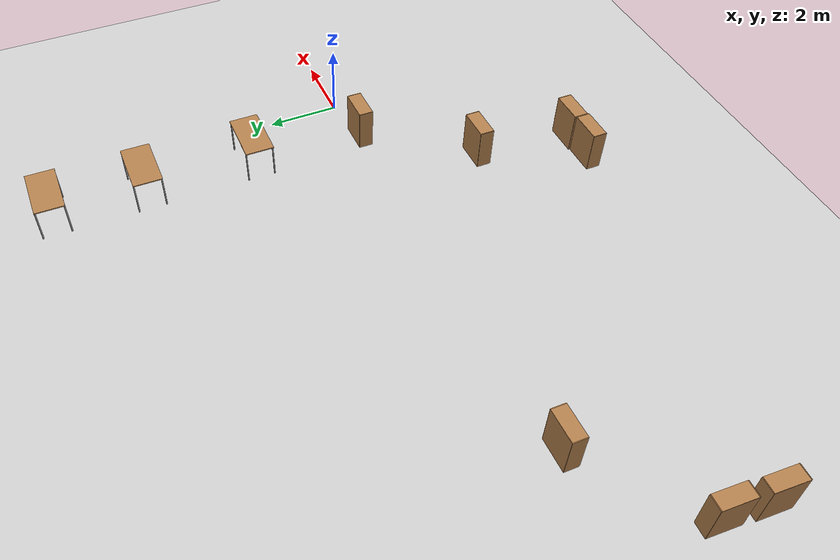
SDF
<sdf version="1.6">
 <world name="default">
  <model name="ground_plane">
   <static>1</static>
   <link name="link">
    <collision name="collision">
     <geometry><plane><normal>0 0 1</normal><size>100 100</size></plane></geometry>
     <surface>
      <contact><collide_bitmask>65535</collide_bitmask></contact>
      <friction><ode><mu>100</mu><mu2>50</mu2></ode></friction>
     </surface>
    </collision>
    <visual name="visual">
     <cast_shadows>0</cast_shadows>
     <geometry><plane><normal>0 0 1</normal><size>100 100</size></plane></geometry>
     <material>
      <script><uri>file://media/materials/scripts/gazebo.material</uri><name>Gazebo/Grey</name></script>
     </material>
    </visual>
   </link>
  </model>
  <model name="table_clone_0_clone_0_clone_clone_clone_clone_clone_3">
   <static>1</static>
   <link name="link">
    <collision name="surface">
     <pose>0 0 1 0 -0 0</pose>
     <geometry><box><size>1.5 0.8 0.03</size></box></geometry>
     <surface><friction><ode><mu>0.6</mu><mu2>0.6</mu2></ode></friction></surface>
    </collision>
    <visual name="visual1">
     <pose>0 0 1 0 -0 0</pose>
     <geometry><box><size>1.5 0.8 0.03</size></box></geometry>
     <material>
      <script><uri>file://media/materials/scripts/gazebo.material</uri><name>Gazebo/Wood</name></script>
     </material>
    </visual>
    <collision name="front_left_leg">
     <pose>0.68 0.38 0.5 0 -0 0</pose>
     <geometry><cylinder><radius>0.02</radius><length>1</length></cylinder></geometry>
    </collision>
    <visual name="front_left_leg">
     <pose>0.68 0.38 0.5 0 -0 0</pose>
     <geometry><cylinder><radius>0.02</radius><length>1</length></cylinder></geometry>
     <material>
      <script><uri>file://media/materials/scripts/gazebo.material</uri><name>Gazebo/Grey</name></script>
     </material>
    </visual>
    <collision name="front_right_leg">
     <pose>0.68 -0.38 0.5 0 -0 0</pose>
     <geometry><cylinder><radius>0.02</radius><length>1</length></cylinder></geometry>
    </collision>
    <visual name="front_right_leg">
     <pose>0.68 -0.38 0.5 0 -0 0</pose>
     <geometry><cylinder><radius>0.02</radius><length>1</length></cylinder></geometry>
     <material>
      <script><uri>file://media/materials/scripts/gazebo.material</uri><name>Gazebo/Grey</name></script>
     </material>
    </visual>
    <collision name="back_right_leg">
     <pose>-0.68 -0.38 0.5 0 -0 0</pose>
     <geometry><cylinder><radius>0.02</radius><length>1</length></cylinder></geometry>
    </collision>
    <visual name="back_right_leg">
     <pose>-0.68 -0.38 0.5 0 -0 0</pose>
     <geometry><cylinder><radius>0.02</radius><length>1</length></cylinder></geometry>
     <material>
      <script><uri>file://media/materials/scripts/gazebo.material</uri><name>Gazebo/Grey</name></script>
     </material>
    </visual>
    <collision name="back_left_leg">
     <pose>-0.68 0.38 0.5 0 -0 0</pose>
     <geometry><cylinder><radius>0.02</radius><length>1</length></cylinder></geometry>
    </collision>
    <visual name="back_left_leg">
     <pose>-0.68 0.38 0.5 0 -0 0</pose>
     <geometry><cylinder><radius>0.02</radius><length>1</length></cylinder></geometry>
     <material>
      <script><uri>file://media/materials/scripts/gazebo.material</uri><name>Gazebo/Grey</name></script>
     </material>
    </visual>
   </link>
   <pose>-1.34747 6.0871 0 0 -0 0</pose>
  </model>
  <model name="table_clone_0_clone_0_clone_clone_clone_clone_clone_3_clone">
   <static>1</static>
   <link name="link">
    <collision name="surface">
     <pose>0 0 1 0 -0 0</pose>
     <geometry><box><size>1.5 0.8 0.03</size></box></geometry>
     <surface><friction><ode><mu>0.6</mu><mu2>0.6</mu2></ode></friction></surface>
    </collision>
    <visual name="visual1">
     <pose>0 0 1 0 -0 0</pose>
     <geometry><box><size>1.5 0.8 0.03</size></box></geometry>
     <material>
      <script><uri>file://media/materials/scripts/gazebo.material</uri><name>Gazebo/Wood</name></script>
     </material>
    </visual>
    <collision name="front_left_leg">
     <pose>0.68 0.38 0.5 0 -0 0</pose>
     <geometry><cylinder><radius>0.02</radius><length>1</length></cylinder></geometry>
    </collision>
    <visual name="front_left_leg">
     <pose>0.68 0.38 0.5 0 -0 0</pose>
     <geometry><cylinder><radius>0.02</radius><length>1</length></cylinder></geometry>
     <material>
      <script><uri>file://media/materials/scripts/gazebo.material</uri><name>Gazebo/Grey</name></script>
     </material>
    </visual>
    <collision name="front_right_leg">
     <pose>0.68 -0.38 0.5 0 -0 0</pose>
     <geometry><cylinder><radius>0.02</radius><length>1</length></cylinder></geometry>
    </collision>
    <visual name="front_right_leg">
     <pose>0.68 -0.38 0.5 0 -0 0</pose>
     <geometry><cylinder><radius>0.02</radius><length>1</length></cylinder></geometry>
     <material>
      <script><uri>file://media/materials/scripts/gazebo.material</uri><name>Gazebo/Grey</name></script>
     </material>
    </visual>
    <collision name="back_right_leg">
     <pose>-0.68 -0.38 0.5 0 -0 0</pose>
     <geometry><cylinder><radius>0.02</radius><length>1</length></cylinder></geometry>
    </collision>
    <visual name="back_right_leg">
     <pose>-0.68 -0.38 0.5 0 -0 0</pose>
     <geometry><cylinder><radius>0.02</radius><length>1</length></cylinder></geometry>
     <material>
      <script><uri>file://media/materials/scripts/gazebo.material</uri><name>Gazebo/Grey</name></script>
     </material>
    </visual>
    <collision name="back_left_leg">
     <pose>-0.68 0.38 0.5 0 -0 0</pose>
     <geometry><cylinder><radius>0.02</radius><length>1</length></cylinder></geometry>
    </collision>
    <visual name="back_left_leg">
     <pose>-0.68 0.38 0.5 0 -0 0</pose>
     <geometry><cylinder><radius>0.02</radius><length>1</length></cylinder></geometry>
     <material>
      <script><uri>file://media/materials/scripts/gazebo.material</uri><name>Gazebo/Grey</name></script>
     </material>
    </visual>
   </link>
   <pose>-1.35639 8.6653 0 0 -0 0</pose>
  </model>
  <model name="table_clone_0_clone_0_clone_clone_clone_clone_clone_3_clone_0">
   <static>1</static>
   <link name="link">
    <collision name="surface">
     <pose>0 0 1 0 -0 0</pose>
     <geometry><box><size>1.5 0.8 0.03</size></box></geometry>
     <surface><friction><ode><mu>0.6</mu><mu2>0.6</mu2></ode></friction></surface>
    </collision>
    <visual name="visual1">
     <pose>0 0 1 0 -0 0</pose>
     <geometry><box><size>1.5 0.8 0.03</size></box></geometry>
     <material>
      <script><uri>file://media/materials/scripts/gazebo.material</uri><name>Gazebo/Wood</name></script>
     </material>
    </visual>
    <collision name="front_left_leg">
     <pose>0.68 0.38 0.5 0 -0 0</pose>
     <geometry><cylinder><radius>0.02</radius><length>1</length></cylinder></geometry>
    </collision>
    <visual name="front_left_leg">
     <pose>0.68 0.38 0.5 0 -0 0</pose>
     <geometry><cylinder><radius>0.02</radius><length>1</length></cylinder></geometry>
     <material>
      <script><uri>file://media/materials/scripts/gazebo.material</uri><name>Gazebo/Grey</name></script>
     </material>
    </visual>
    <collision name="front_right_leg">
     <pose>0.68 -0.38 0.5 0 -0 0</pose>
     <geometry><cylinder><radius>0.02</radius><length>1</length></cylinder></geometry>
    </collision>
    <visual name="front_right_leg">
     <pose>0.68 -0.38 0.5 0 -0 0</pose>
     <geometry><cylinder><radius>0.02</radius><length>1</length></cylinder></geometry>
     <material>
      <script><uri>file://media/materials/scripts/gazebo.material</uri><name>Gazebo/Grey</name></script>
     </material>
    </visual>
    <collision name="back_right_leg">
     <pose>-0.68 -0.38 0.5 0 -0 0</pose>
     <geometry><cylinder><radius>0.02</radius><length>1</length></cylinder></geometry>
    </collision>
    <visual name="back_right_leg">
     <pose>-0.68 -0.38 0.5 0 -0 0</pose>
     <geometry><cylinder><radius>0.02</radius><length>1</length></cylinder></geometry>
     <material>
      <script><uri>file://media/materials/scripts/gazebo.material</uri><name>Gazebo/Grey</name></script>
     </material>
    </visual>
    <collision name="back_left_leg">
     <pose>-0.68 0.38 0.5 0 -0 0</pose>
     <geometry><cylinder><radius>0.02</radius><length>1</length></cylinder></geometry>
    </collision>
    <visual name="back_left_leg">
     <pose>-0.68 0.38 0.5 0 -0 0</pose>
     <geometry><cylinder><radius>0.02</radius><length>1</length></cylinder></geometry>
     <material>
      <script><uri>file://media/materials/scripts/gazebo.material</uri><name>Gazebo/Grey</name></script>
     </material>
    </visual>
   </link>
   <pose>-1.30838 2.9678 0 0 -0 0</pose>
  </model>
  <model name="bookshelf">
   <static>1</static>
   <link name="link">
    <inertial><mass>1</mass></inertial>
    <collision name="back">
     <pose>0 0.005 0.6 0 -0 0</pose>
     <geometry><box><size>0.9 0.01 1.2</size></box></geometry>
    </collision>
    <visual name="visual1">
     <pose>0 0.005 0.6 0 -0 0</pose>
     <geometry><box><size>0.9 0.01 1.2</size></box></geometry>
     <material>
      <script><uri>file://media/materials/scripts/gazebo.material</uri><name>Gazebo/Wood</name></script>
     </material>
    </visual>
    <collision name="left_side">
     <pose>0.45 -0.195 0.6 0 -0 0</pose>
     <geometry><box><size>0.02 0.4 1.2</size></box></geometry>
    </collision>
    <visual name="visual2">
     <pose>0.45 -0.195 0.6 0 -0 0</pose>
     <geometry><box><size>0.02 0.4 1.2</size></box></geometry>
     <material>
      <script><uri>file://media/materials/scripts/gazebo.material</uri><name>Gazebo/Wood</name></script>
     </material>
    </visual>
    <collision name="right_side">
     <pose>-0.45 -0.195 0.6 0 -0 0</pose>
     <geometry><box><size>0.02 0.4 1.2</size></box></geometry>
    </collision>
    <visual name="visual3">
     <pose>-0.45 -0.195 0.6 0 -0 0</pose>
     <geometry><box><size>0.02 0.4 1.2</size></box></geometry>
     <material>
      <script><uri>file://media/materials/scripts/gazebo.material</uri><name>Gazebo/Wood</name></script>
     </material>
    </visual>
    <collision name="bottom">
     <pose>0 -0.195 0.03 0 -0 0</pose>
     <geometry><box><size>0.88 0.4 0.06</size></box></geometry>
    </collision>
    <visual name="visual4">
     <pose>0 -0.195 0.03 0 -0 0</pose>
     <geometry><box><size>0.88 0.4 0.06</size></box></geometry>
     <material>
      <script><uri>file://media/materials/scripts/gazebo.material</uri><name>Gazebo/Wood</name></script>
     </material>
    </visual>
    <collision name="top">
     <pose>0 -0.195 1.19 0 -0 0</pose>
     <geometry><box><size>0.88 0.4 0.02</size></box></geometry>
    </collision>
    <visual name="visual5">
     <pose>0 -0.195 1.19 0 -0 0</pose>
     <geometry><box><size>0.88 0.4 0.02</size></box></geometry>
     <material>
      <script><uri>file://media/materials/scripts/gazebo.material</uri><name>Gazebo/Wood</name></script>
     </material>
    </visual>
    <collision name="low_shelf">
     <pose>0 -0.195 0.43 0 -0 0</pose>
     <geometry><box><size>0.88 0.4 0.02</size></box></geometry>
    </collision>
    <visual name="visual6">
     <pose>0 -0.195 0.43 0 -0 0</pose>
     <geometry><box><size>0.88 0.4 0.02</size></box></geometry>
     <material>
      <script><uri>file://media/materials/scripts/gazebo.material</uri><name>Gazebo/Wood</name></script>
     </material>
    </visual>
    <collision name="high_shelf">
     <pose>0 -0.195 0.8 0 -0 0</pose>
     <geometry><box><size>0.88 0.4 0.02</size></box></geometry>
    </collision>
    <visual name="visual7">
     <pose>0 -0.195 0.8 0 -0 0</pose>
     <geometry><box><size>0.88 0.4 0.02</size></box></geometry>
     <material>
      <script><uri>file://media/materials/scripts/gazebo.material</uri><name>Gazebo/Wood</name></script>
     </material>
    </visual>
   </link>
   <pose>-3.50019 -2.79312 0 0 -0 0</pose>
  </model>
  <model name="bookshelf_clone">
   <static>1</static>
   <link name="link">
    <inertial><mass>1</mass></inertial>
    <collision name="back">
     <pose>0 0.005 0.6 0 -0 0</pose>
     <geometry><box><size>0.9 0.01 1.2</size></box></geometry>
    </collision>
    <visual name="visual1">
     <pose>0 0.005 0.6 0 -0 0</pose>
     <geometry><box><size>0.9 0.01 1.2</size></box></geometry>
     <material>
      <script><uri>file://media/materials/scripts/gazebo.material</uri><name>Gazebo/Wood</name></script>
     </material>
    </visual>
    <collision name="left_side">
     <pose>0.45 -0.195 0.6 0 -0 0</pose>
     <geometry><box><size>0.02 0.4 1.2</size></box></geometry>
    </collision>
    <visual name="visual2">
     <pose>0.45 -0.195 0.6 0 -0 0</pose>
     <geometry><box><size>0.02 0.4 1.2</size></box></geometry>
     <material>
      <script><uri>file://media/materials/scripts/gazebo.material</uri><name>Gazebo/Wood</name></script>
     </material>
    </visual>
    <collision name="right_side">
     <pose>-0.45 -0.195 0.6 0 -0 0</pose>
     <geometry><box><size>0.02 0.4 1.2</size></box></geometry>
    </collision>
    <visual name="visual3">
     <pose>-0.45 -0.195 0.6 0 -0 0</pose>
     <geometry><box><size>0.02 0.4 1.2</size></box></geometry>
     <material>
      <script><uri>file://media/materials/scripts/gazebo.material</uri><name>Gazebo/Wood</name></script>
     </material>
    </visual>
    <collision name="bottom">
     <pose>0 -0.195 0.03 0 -0 0</pose>
     <geometry><box><size>0.88 0.4 0.06</size></box></geometry>
    </collision>
    <visual name="visual4">
     <pose>0 -0.195 0.03 0 -0 0</pose>
     <geometry><box><size>0.88 0.4 0.06</size></box></geometry>
     <material>
      <script><uri>file://media/materials/scripts/gazebo.material</uri><name>Gazebo/Wood</name></script>
     </material>
    </visual>
    <collision name="top">
     <pose>0 -0.195 1.19 0 -0 0</pose>
     <geometry><box><size>0.88 0.4 0.02</size></box></geometry>
    </collision>
    <visual name="visual5">
     <pose>0 -0.195 1.19 0 -0 0</pose>
     <geometry><box><size>0.88 0.4 0.02</size></box></geometry>
     <material>
      <script><uri>file://media/materials/scripts/gazebo.material</uri><name>Gazebo/Wood</name></script>
     </material>
    </visual>
    <collision name="low_shelf">
     <pose>0 -0.195 0.43 0 -0 0</pose>
     <geometry><box><size>0.88 0.4 0.02</size></box></geometry>
    </collision>
    <visual name="visual6">
     <pose>0 -0.195 0.43 0 -0 0</pose>
     <geometry><box><size>0.88 0.4 0.02</size></box></geometry>
     <material>
      <script><uri>file://media/materials/scripts/gazebo.material</uri><name>Gazebo/Wood</name></script>
     </material>
    </visual>
    <collision name="high_shelf">
     <pose>0 -0.195 0.8 0 -0 0</pose>
     <geometry><box><size>0.88 0.4 0.02</size></box></geometry>
    </collision>
    <visual name="visual7">
     <pose>0 -0.195 0.8 0 -0 0</pose>
     <geometry><box><size>0.88 0.4 0.02</size></box></geometry>
     <material>
      <script><uri>file://media/materials/scripts/gazebo.material</uri><name>Gazebo/Wood</name></script>
     </material>
    </visual>
   </link>
   <pose>-1.47033 -0.028196 0 0 -0 0</pose>
  </model>
  <model name="bookshelf_clone_0">
   <static>1</static>
   <link name="link">
    <inertial><mass>1</mass></inertial>
    <collision name="back">
     <pose>0 0.005 0.6 0 -0 0</pose>
     <geometry><box><size>0.9 0.01 1.2</size></box></geometry>
    </collision>
    <visual name="visual1">
     <pose>0 0.005 0.6 0 -0 0</pose>
     <geometry><box><size>0.9 0.01 1.2</size></box></geometry>
     <material>
      <script><uri>file://media/materials/scripts/gazebo.material</uri><name>Gazebo/Wood</name></script>
     </material>
    </visual>
    <collision name="left_side">
     <pose>0.45 -0.195 0.6 0 -0 0</pose>
     <geometry><box><size>0.02 0.4 1.2</size></box></geometry>
    </collision>
    <visual name="visual2">
     <pose>0.45 -0.195 0.6 0 -0 0</pose>
     <geometry><box><size>0.02 0.4 1.2</size></box></geometry>
     <material>
      <script><uri>file://media/materials/scripts/gazebo.material</uri><name>Gazebo/Wood</name></script>
     </material>
    </visual>
    <collision name="right_side">
     <pose>-0.45 -0.195 0.6 0 -0 0</pose>
     <geometry><box><size>0.02 0.4 1.2</size></box></geometry>
    </collision>
    <visual name="visual3">
     <pose>-0.45 -0.195 0.6 0 -0 0</pose>
     <geometry><box><size>0.02 0.4 1.2</size></box></geometry>
     <material>
      <script><uri>file://media/materials/scripts/gazebo.material</uri><name>Gazebo/Wood</name></script>
     </material>
    </visual>
    <collision name="bottom">
     <pose>0 -0.195 0.03 0 -0 0</pose>
     <geometry><box><size>0.88 0.4 0.06</size></box></geometry>
    </collision>
    <visual name="visual4">
     <pose>0 -0.195 0.03 0 -0 0</pose>
     <geometry><box><size>0.88 0.4 0.06</size></box></geometry>
     <material>
      <script><uri>file://media/materials/scripts/gazebo.material</uri><name>Gazebo/Wood</name></script>
     </material>
    </visual>
    <collision name="top">
     <pose>0 -0.195 1.19 0 -0 0</pose>
     <geometry><box><size>0.88 0.4 0.02</size></box></geometry>
    </collision>
    <visual name="visual5">
     <pose>0 -0.195 1.19 0 -0 0</pose>
     <geometry><box><size>0.88 0.4 0.02</size></box></geometry>
     <material>
      <script><uri>file://media/materials/scripts/gazebo.material</uri><name>Gazebo/Wood</name></script>
     </material>
    </visual>
    <collision name="low_shelf">
     <pose>0 -0.195 0.43 0 -0 0</pose>
     <geometry><box><size>0.88 0.4 0.02</size></box></geometry>
    </collision>
    <visual name="visual6">
     <pose>0 -0.195 0.43 0 -0 0</pose>
     <geometry><box><size>0.88 0.4 0.02</size></box></geometry>
     <material>
      <script><uri>file://media/materials/scripts/gazebo.material</uri><name>Gazebo/Wood</name></script>
     </material>
    </visual>
    <collision name="high_shelf">
     <pose>0 -0.195 0.8 0 -0 0</pose>
     <geometry><box><size>0.88 0.4 0.02</size></box></geometry>
    </collision>
    <visual name="visual7">
     <pose>0 -0.195 0.8 0 -0 0</pose>
     <geometry><box><size>0.88 0.4 0.02</size></box></geometry>
     <material>
      <script><uri>file://media/materials/scripts/gazebo.material</uri><name>Gazebo/Wood</name></script>
     </material>
    </visual>
   </link>
   <pose>-4.77903 -5.60048 0 0 -0 0</pose>
  </model>
  <model name="bookshelf_clone_0_clone">
   <static>1</static>
   <link name="link">
    <inertial><mass>1</mass></inertial>
    <collision name="back">
     <pose>0 0.005 0.6 0 -0 0</pose>
     <geometry><box><size>0.9 0.01 1.2</size></box></geometry>
    </collision>
    <visual name="visual1">
     <pose>0 0.005 0.6 0 -0 0</pose>
     <geometry><box><size>0.9 0.01 1.2</size></box></geometry>
     <material>
      <script><uri>file://media/materials/scripts/gazebo.material</uri><name>Gazebo/Wood</name></script>
     </material>
    </visual>
    <collision name="left_side">
     <pose>0.45 -0.195 0.6 0 -0 0</pose>
     <geometry><box><size>0.02 0.4 1.2</size></box></geometry>
    </collision>
    <visual name="visual2">
     <pose>0.45 -0.195 0.6 0 -0 0</pose>
     <geometry><box><size>0.02 0.4 1.2</size></box></geometry>
     <material>
      <script><uri>file://media/materials/scripts/gazebo.material</uri><name>Gazebo/Wood</name></script>
     </material>
    </visual>
    <collision name="right_side">
     <pose>-0.45 -0.195 0.6 0 -0 0</pose>
     <geometry><box><size>0.02 0.4 1.2</size></box></geometry>
    </collision>
    <visual name="visual3">
     <pose>-0.45 -0.195 0.6 0 -0 0</pose>
     <geometry><box><size>0.02 0.4 1.2</size></box></geometry>
     <material>
      <script><uri>file://media/materials/scripts/gazebo.material</uri><name>Gazebo/Wood</name></script>
     </material>
    </visual>
    <collision name="bottom">
     <pose>0 -0.195 0.03 0 -0 0</pose>
     <geometry><box><size>0.88 0.4 0.06</size></box></geometry>
    </collision>
    <visual name="visual4">
     <pose>0 -0.195 0.03 0 -0 0</pose>
     <geometry><box><size>0.88 0.4 0.06</size></box></geometry>
     <material>
      <script><uri>file://media/materials/scripts/gazebo.material</uri><name>Gazebo/Wood</name></script>
     </material>
    </visual>
    <collision name="top">
     <pose>0 -0.195 1.19 0 -0 0</pose>
     <geometry><box><size>0.88 0.4 0.02</size></box></geometry>
    </collision>
    <visual name="visual5">
     <pose>0 -0.195 1.19 0 -0 0</pose>
     <geometry><box><size>0.88 0.4 0.02</size></box></geometry>
     <material>
      <script><uri>file://media/materials/scripts/gazebo.material</uri><name>Gazebo/Wood</name></script>
     </material>
    </visual>
    <collision name="low_shelf">
     <pose>0 -0.195 0.43 0 -0 0</pose>
     <geometry><box><size>0.88 0.4 0.02</size></box></geometry>
    </collision>
    <visual name="visual6">
     <pose>0 -0.195 0.43 0 -0 0</pose>
     <geometry><box><size>0.88 0.4 0.02</size></box></geometry>
     <material>
      <script><uri>file://media/materials/scripts/gazebo.material</uri><name>Gazebo/Wood</name></script>
     </material>
    </visual>
    <collision name="high_shelf">
     <pose>0 -0.195 0.8 0 -0 0</pose>
     <geometry><box><size>0.88 0.4 0.02</size></box></geometry>
    </collision>
    <visual name="visual7">
     <pose>0 -0.195 0.8 0 -0 0</pose>
     <geometry><box><size>0.88 0.4 0.02</size></box></geometry>
     <material>
      <script><uri>file://media/materials/scripts/gazebo.material</uri><name>Gazebo/Wood</name></script>
     </material>
    </visual>
   </link>
   <pose>-3.85819 -5.55868 0 0 -0 0</pose>
  </model>
  <model name="bookshelf_clone_0_clone_clone">
   <static>1</static>
   <link name="link">
    <inertial><mass>1</mass></inertial>
    <collision name="back">
     <pose>0 0.005 0.6 0 -0 0</pose>
     <geometry><box><size>0.9 0.01 1.2</size></box></geometry>
    </collision>
    <visual name="visual1">
     <pose>0 0.005 0.6 0 -0 0</pose>
     <geometry><box><size>0.9 0.01 1.2</size></box></geometry>
     <material>
      <script><uri>file://media/materials/scripts/gazebo.material</uri><name>Gazebo/Wood</name></script>
     </material>
    </visual>
    <collision name="left_side">
     <pose>0.45 -0.195 0.6 0 -0 0</pose>
     <geometry><box><size>0.02 0.4 1.2</size></box></geometry>
    </collision>
    <visual name="visual2">
     <pose>0.45 -0.195 0.6 0 -0 0</pose>
     <geometry><box><size>0.02 0.4 1.2</size></box></geometry>
     <material>
      <script><uri>file://media/materials/scripts/gazebo.material</uri><name>Gazebo/Wood</name></script>
     </material>
    </visual>
    <collision name="right_side">
     <pose>-0.45 -0.195 0.6 0 -0 0</pose>
     <geometry><box><size>0.02 0.4 1.2</size></box></geometry>
    </collision>
    <visual name="visual3">
     <pose>-0.45 -0.195 0.6 0 -0 0</pose>
     <geometry><box><size>0.02 0.4 1.2</size></box></geometry>
     <material>
      <script><uri>file://media/materials/scripts/gazebo.material</uri><name>Gazebo/Wood</name></script>
     </material>
    </visual>
    <collision name="bottom">
     <pose>0 -0.195 0.03 0 -0 0</pose>
     <geometry><box><size>0.88 0.4 0.06</size></box></geometry>
    </collision>
    <visual name="visual4">
     <pose>0 -0.195 0.03 0 -0 0</pose>
     <geometry><box><size>0.88 0.4 0.06</size></box></geometry>
     <material>
      <script><uri>file://media/materials/scripts/gazebo.material</uri><name>Gazebo/Wood</name></script>
     </material>
    </visual>
    <collision name="top">
     <pose>0 -0.195 1.19 0 -0 0</pose>
     <geometry><box><size>0.88 0.4 0.02</size></box></geometry>
    </collision>
    <visual name="visual5">
     <pose>0 -0.195 1.19 0 -0 0</pose>
     <geometry><box><size>0.88 0.4 0.02</size></box></geometry>
     <material>
      <script><uri>file://media/materials/scripts/gazebo.material</uri><name>Gazebo/Wood</name></script>
     </material>
    </visual>
    <collision name="low_shelf">
     <pose>0 -0.195 0.43 0 -0 0</pose>
     <geometry><box><size>0.88 0.4 0.02</size></box></geometry>
    </collision>
    <visual name="visual6">
     <pose>0 -0.195 0.43 0 -0 0</pose>
     <geometry><box><size>0.88 0.4 0.02</size></box></geometry>
     <material>
      <script><uri>file://media/materials/scripts/gazebo.material</uri><name>Gazebo/Wood</name></script>
     </material>
    </visual>
    <collision name="high_shelf">
     <pose>0 -0.195 0.8 0 -0 0</pose>
     <geometry><box><size>0.88 0.4 0.02</size></box></geometry>
    </collision>
    <visual name="visual7">
     <pose>0 -0.195 0.8 0 -0 0</pose>
     <geometry><box><size>0.88 0.4 0.02</size></box></geometry>
     <material>
      <script><uri>file://media/materials/scripts/gazebo.material</uri><name>Gazebo/Wood</name></script>
     </material>
    </visual>
   </link>
   <pose>-12.799 -0.092125 0 0 -0 0</pose>
  </model>
  <model name="bookshelf_clone_0_clone_clone_clone">
   <static>1</static>
   <link name="link">
    <inertial><mass>1</mass></inertial>
    <collision name="back">
     <pose>0 0.005 0.6 0 -0 0</pose>
     <geometry><box><size>0.9 0.01 1.2</size></box></geometry>
    </collision>
    <visual name="visual1">
     <pose>0 0.005 0.6 0 -0 0</pose>
     <geometry><box><size>0.9 0.01 1.2</size></box></geometry>
     <material>
      <script><uri>file://media/materials/scripts/gazebo.material</uri><name>Gazebo/Wood</name></script>
     </material>
    </visual>
    <collision name="left_side">
     <pose>0.45 -0.195 0.6 0 -0 0</pose>
     <geometry><box><size>0.02 0.4 1.2</size></box></geometry>
    </collision>
    <visual name="visual2">
     <pose>0.45 -0.195 0.6 0 -0 0</pose>
     <geometry><box><size>0.02 0.4 1.2</size></box></geometry>
     <material>
      <script><uri>file://media/materials/scripts/gazebo.material</uri><name>Gazebo/Wood</name></script>
     </material>
    </visual>
    <collision name="right_side">
     <pose>-0.45 -0.195 0.6 0 -0 0</pose>
     <geometry><box><size>0.02 0.4 1.2</size></box></geometry>
    </collision>
    <visual name="visual3">
     <pose>-0.45 -0.195 0.6 0 -0 0</pose>
     <geometry><box><size>0.02 0.4 1.2</size></box></geometry>
     <material>
      <script><uri>file://media/materials/scripts/gazebo.material</uri><name>Gazebo/Wood</name></script>
     </material>
    </visual>
    <collision name="bottom">
     <pose>0 -0.195 0.03 0 -0 0</pose>
     <geometry><box><size>0.88 0.4 0.06</size></box></geometry>
    </collision>
    <visual name="visual4">
     <pose>0 -0.195 0.03 0 -0 0</pose>
     <geometry><box><size>0.88 0.4 0.06</size></box></geometry>
     <material>
      <script><uri>file://media/materials/scripts/gazebo.material</uri><name>Gazebo/Wood</name></script>
     </material>
    </visual>
    <collision name="top">
     <pose>0 -0.195 1.19 0 -0 0</pose>
     <geometry><box><size>0.88 0.4 0.02</size></box></geometry>
    </collision>
    <visual name="visual5">
     <pose>0 -0.195 1.19 0 -0 0</pose>
     <geometry><box><size>0.88 0.4 0.02</size></box></geometry>
     <material>
      <script><uri>file://media/materials/scripts/gazebo.material</uri><name>Gazebo/Wood</name></script>
     </material>
    </visual>
    <collision name="low_shelf">
     <pose>0 -0.195 0.43 0 -0 0</pose>
     <geometry><box><size>0.88 0.4 0.02</size></box></geometry>
    </collision>
    <visual name="visual6">
     <pose>0 -0.195 0.43 0 -0 0</pose>
     <geometry><box><size>0.88 0.4 0.02</size></box></geometry>
     <material>
      <script><uri>file://media/materials/scripts/gazebo.material</uri><name>Gazebo/Wood</name></script>
     </material>
    </visual>
    <collision name="high_shelf">
     <pose>0 -0.195 0.8 0 -0 0</pose>
     <geometry><box><size>0.88 0.4 0.02</size></box></geometry>
    </collision>
    <visual name="visual7">
     <pose>0 -0.195 0.8 0 -0 0</pose>
     <geometry><box><size>0.88 0.4 0.02</size></box></geometry>
     <material>
      <script><uri>file://media/materials/scripts/gazebo.material</uri><name>Gazebo/Wood</name></script>
     </material>
    </visual>
   </link>
   <pose>-15.6953 -2.44433 0 0 -0 1.52866</pose>
  </model>
  <model name="bookshelf_clone_0_clone_clone_clone_clone">
   <static>1</static>
   <link name="link">
    <inertial><mass>1</mass></inertial>
    <collision name="back">
     <pose>0 0.005 0.6 0 -0 0</pose>
     <geometry><box><size>0.9 0.01 1.2</size></box></geometry>
    </collision>
    <visual name="visual1">
     <pose>0 0.005 0.6 0 -0 0</pose>
     <geometry><box><size>0.9 0.01 1.2</size></box></geometry>
     <material>
      <script><uri>file://media/materials/scripts/gazebo.material</uri><name>Gazebo/Wood</name></script>
     </material>
    </visual>
    <collision name="left_side">
     <pose>0.45 -0.195 0.6 0 -0 0</pose>
     <geometry><box><size>0.02 0.4 1.2</size></box></geometry>
    </collision>
    <visual name="visual2">
     <pose>0.45 -0.195 0.6 0 -0 0</pose>
     <geometry><box><size>0.02 0.4 1.2</size></box></geometry>
     <material>
      <script><uri>file://media/materials/scripts/gazebo.material</uri><name>Gazebo/Wood</name></script>
     </material>
    </visual>
    <collision name="right_side">
     <pose>-0.45 -0.195 0.6 0 -0 0</pose>
     <geometry><box><size>0.02 0.4 1.2</size></box></geometry>
    </collision>
    <visual name="visual3">
     <pose>-0.45 -0.195 0.6 0 -0 0</pose>
     <geometry><box><size>0.02 0.4 1.2</size></box></geometry>
     <material>
      <script><uri>file://media/materials/scripts/gazebo.material</uri><name>Gazebo/Wood</name></script>
     </material>
    </visual>
    <collision name="bottom">
     <pose>0 -0.195 0.03 0 -0 0</pose>
     <geometry><box><size>0.88 0.4 0.06</size></box></geometry>
    </collision>
    <visual name="visual4">
     <pose>0 -0.195 0.03 0 -0 0</pose>
     <geometry><box><size>0.88 0.4 0.06</size></box></geometry>
     <material>
      <script><uri>file://media/materials/scripts/gazebo.material</uri><name>Gazebo/Wood</name></script>
     </material>
    </visual>
    <collision name="top">
     <pose>0 -0.195 1.19 0 -0 0</pose>
     <geometry><box><size>0.88 0.4 0.02</size></box></geometry>
    </collision>
    <visual name="visual5">
     <pose>0 -0.195 1.19 0 -0 0</pose>
     <geometry><box><size>0.88 0.4 0.02</size></box></geometry>
     <material>
      <script><uri>file://media/materials/scripts/gazebo.material</uri><name>Gazebo/Wood</name></script>
     </material>
    </visual>
    <collision name="low_shelf">
     <pose>0 -0.195 0.43 0 -0 0</pose>
     <geometry><box><size>0.88 0.4 0.02</size></box></geometry>
    </collision>
    <visual name="visual6">
     <pose>0 -0.195 0.43 0 -0 0</pose>
     <geometry><box><size>0.88 0.4 0.02</size></box></geometry>
     <material>
      <script><uri>file://media/materials/scripts/gazebo.material</uri><name>Gazebo/Wood</name></script>
     </material>
    </visual>
    <collision name="high_shelf">
     <pose>0 -0.195 0.8 0 -0 0</pose>
     <geometry><box><size>0.88 0.4 0.02</size></box></geometry>
    </collision>
    <visual name="visual7">
     <pose>0 -0.195 0.8 0 -0 0</pose>
     <geometry><box><size>0.88 0.4 0.02</size></box></geometry>
     <material>
      <script><uri>file://media/materials/scripts/gazebo.material</uri><name>Gazebo/Wood</name></script>
     </material>
    </visual>
   </link>
   <pose>-15.7838 -3.6439 0 0 -0 1.52866</pose>
  </model>
 </world>
</sdf>
